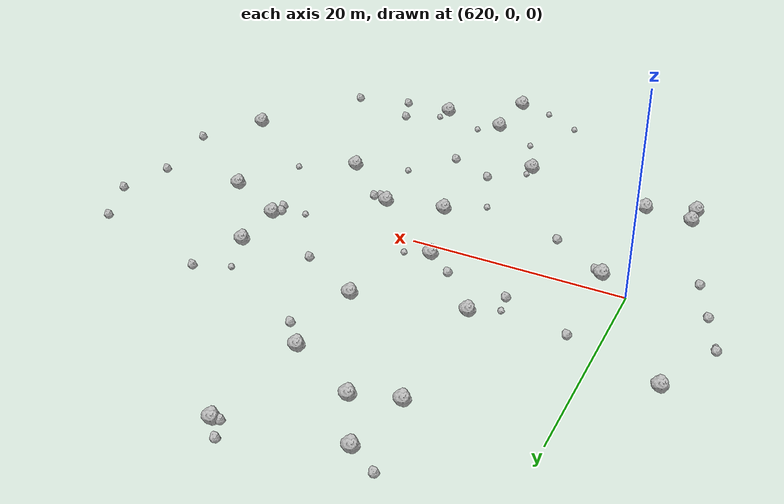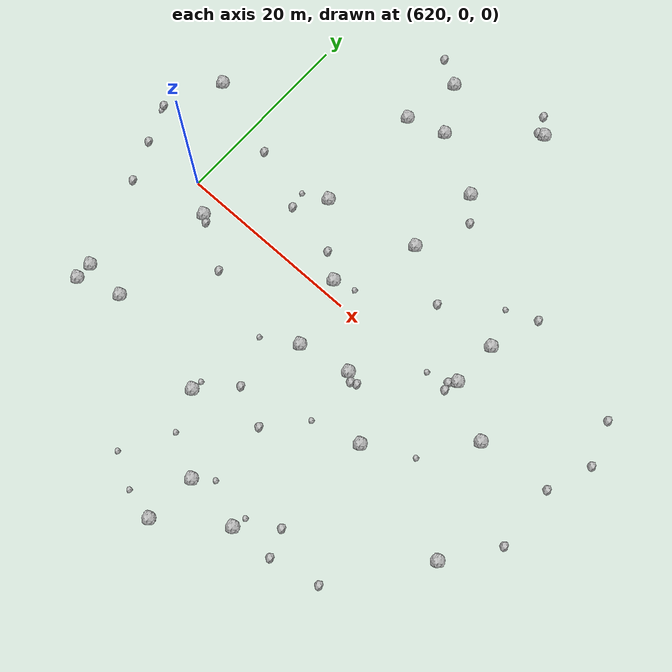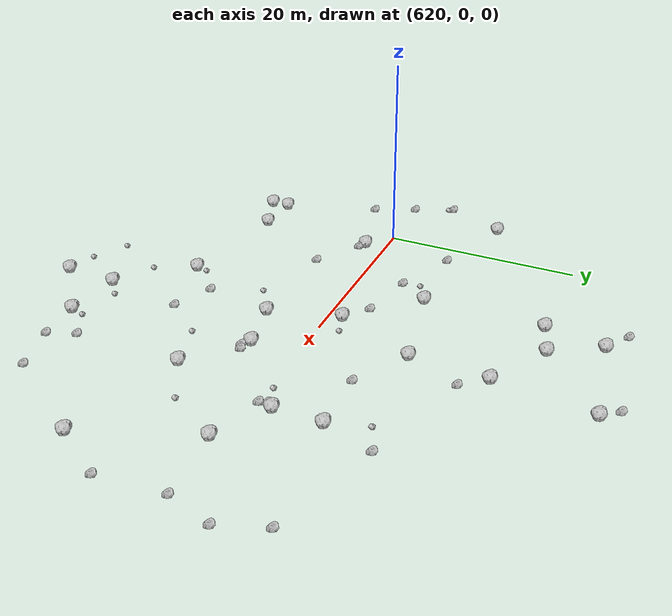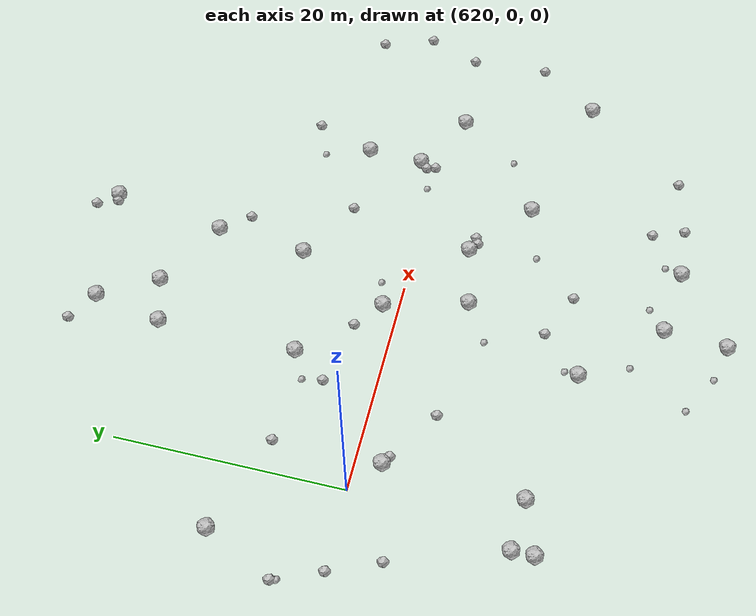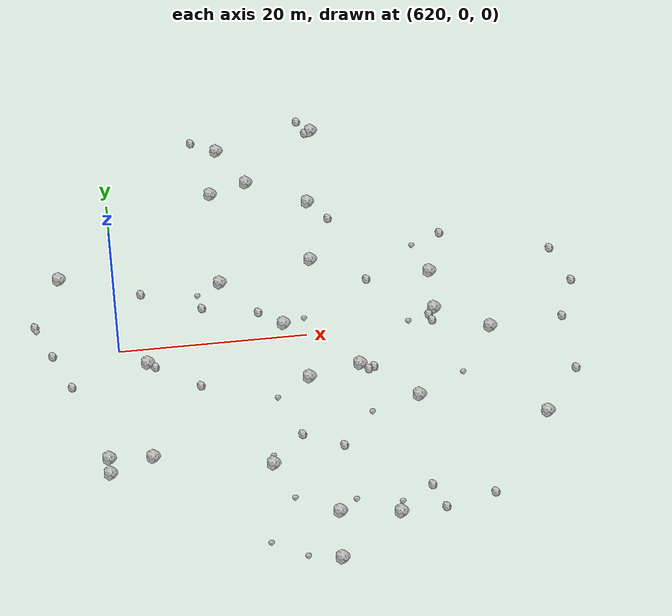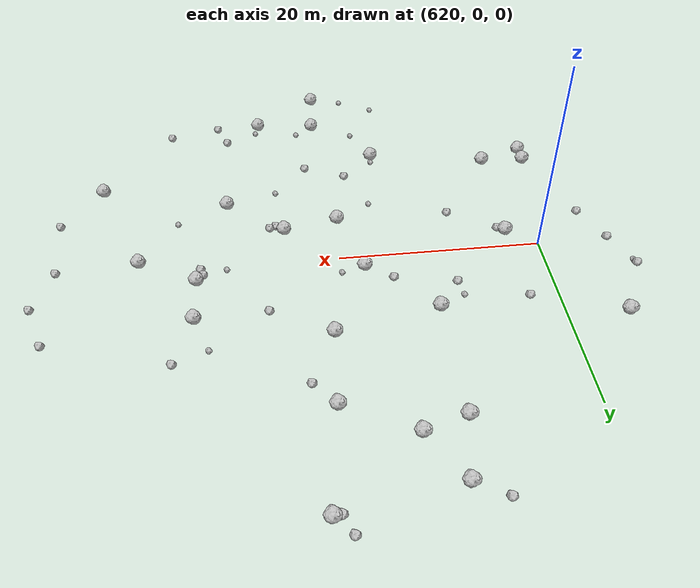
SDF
<sdf version="1.6">
 <world name="default">
  <include><uri>model://sun</uri></include>
  <model name="rock1_16_3">
   <include><uri>model://rock1</uri><pose>640.9179180316601 -22.855088018107523 0.5 0 0 0</pose></include>
  </model>
  <model name="rock1_16_4">
   <include><uri>model://rock1</uri><pose>653.9480879040835 1.8075277114036012 0.5 0 0 0</pose></include>
  </model>
  <model name="rock1_16_5">
   <include><uri>model://rock1</uri><pose>632.7248423310896 26.277384002841124 0.5 0 0 0</pose></include>
  </model>
  <model name="rock1_16_6">
   <include><uri>model://rock1</uri><pose>622.9202731600282 -2.163931713184539 0.5 0 0 0</pose></include>
  </model>
  <model name="rock1_16_7">
   <include><uri>model://rock1</uri><pose>622.5680611370533 -14.15012628049375 0.5 0 0 0</pose></include>
  </model>
  <model name="rock1_16_8">
   <include><uri>model://rock1</uri><pose>642.0836166489119 17.878089277357375 0.5 0 0 0</pose></include>
  </model>
  <model name="rock1_16_9">
   <include><uri>model://rock1</uri><pose>659.5736893577033 -1.2685945232825233 0.5 0 0 0</pose></include>
  </model>
  <model name="rock1_16_10">
   <include><uri>model://rock1</uri><pose>645.186707852381 -4.6671735750320344 0.5 0 0 0</pose></include>
  </model>
  <model name="rock1_16_11">
   <include><uri>model://rock1</uri><pose>639.6820947432288 -5.804105982791128 0.5 0 0 0</pose></include>
  </model>
  <model name="rock1_16_12">
   <include><uri>model://rock1</uri><pose>637.7042509927877 1.475646485162848 0.5 0 0 0</pose></include>
  </model>
  <model name="rock1_16_13">
   <include><uri>model://rock1</uri><pose>647.0925384567656 -23.587359685212647 0.5 0 0 0</pose></include>
  </model>
  <model name="rock1_16_14">
   <include><uri>model://rock1</uri><pose>640.4988118630145 -28.376408514939428 0.5 0 0 0</pose></include>
  </model>
  <model name="rock1_16_15">
   <include><uri>model://rock1</uri><pose>635.57899173564 21.3490631444864 0.5 0 0 0</pose></include>
  </model>
  <model name="rock1_16_16">
   <include><uri>model://rock1</uri><pose>643.573001994227 28.13265029655267 0.5 0 0 0</pose></include>
  </model>
  <model name="rock1_16_17">
   <include><uri>model://rock1</uri><pose>650.8835311110566 -9.344466584088522 0.5 0 0 0</pose></include>
  </model>
  <model name="rock1_16_18">
   <include><uri>model://rock1</uri><pose>614.1997275676592 10.013396057061072 0.5 0 0 0</pose></include>
  </model>
  <model name="rock1_16_19">
   <include><uri>model://rock1</uri><pose>631.4366944448577 7.678793747855735 0.5 0 0 0</pose></include>
  </model>
  <model name="rock1_16_20">
   <include><uri>model://rock1</uri><pose>654.131569358159 6.814421573072124 0.5 0 0 0</pose></include>
  </model>
  <model name="rock1_16_21">
   <include><uri>model://rock1</uri><pose>631.511693178842 20.086923645662957 0.5 0 0 0</pose></include>
  </model>
  <model name="rock1_16_22">
   <include><uri>model://rock1</uri><pose>618.065940295445 -15.721225943919407 0.5 0 0 0</pose></include>
  </model>
  <model name="rock1_16_23">
   <include><uri>model://rock1</uri><pose>634.8043790478741 -16.345927035335777 0.5 0 0 0</pose></include>
  </model>
  <model name="rock1_16_24">
   <include><uri>model://rock1</uri><pose>641.4848924237888 9.791355692980169 0.5 0 0 0</pose></include>
  </model>
  <model name="rock1_16_25">
   <include><uri>model://rock1</uri><pose>618.0470991616141 -13.847681899091342 0.5 0 0 0</pose></include>
  </model>
  <model name="rock1_16_26">
   <include><uri>model://rock1</uri><pose>663.9148012494474 -12.872118261599496 0.5 0 0 0</pose></include>
  </model>
  <model name="rock2_16_0">
   <include><uri>model://rock2</uri><pose>642.1082437067645 29.81400294700594 0.3 0 0 0</pose></include>
  </model>
  <model name="rock2_16_1">
   <include><uri>model://rock2</uri><pose>614.7533294294866 -4.3054035076457495 0.3 0 0 0</pose></include>
  </model>
  <model name="rock2_16_2">
   <include><uri>model://rock2</uri><pose>612.9407203092202 -0.07301878084572522 0.3 0 0 0</pose></include>
  </model>
  <model name="rock2_16_3">
   <include><uri>model://rock2</uri><pose>667.553667751038 8.70631345683259 0.3 0 0 0</pose></include>
  </model>
  <model name="rock2_16_4">
   <include><uri>model://rock2</uri><pose>646.5993997507842 -5.031475569613608 0.3 0 0 0</pose></include>
  </model>
  <model name="rock2_16_5">
   <include><uri>model://rock2</uri><pose>622.8136799817127 7.1716176290915215 0.3 0 0 0</pose></include>
  </model>
  <model name="rock2_16_6">
   <include><uri>model://rock2</uri><pose>644.0275949571756 15.468883761676764 0.3 0 0 0</pose></include>
  </model>
  <model name="rock2_16_7">
   <include><uri>model://rock2</uri><pose>628.2308769147672 -5.547629679953467 0.3 0 0 0</pose></include>
  </model>
  <model name="rock2_16_8">
   <include><uri>model://rock2</uri><pose>642.289963310001 -14.70535727899642 0.3 0 0 0</pose></include>
  </model>
  <model name="rock2_16_9">
   <include><uri>model://rock2</uri><pose>650.6767396131852 -20.539124903275187 0.3 0 0 0</pose></include>
  </model>
  <model name="rock2_16_10">
   <include><uri>model://rock2</uri><pose>651.7265859293437 -23.351217238092474 0.3 0 0 0</pose></include>
  </model>
  <model name="rock2_16_11">
   <include><uri>model://rock2</uri><pose>638.1434506982948 -12.885781202402121 0.3 0 0 0</pose></include>
  </model>
  <model name="rock2_16_12">
   <include><uri>model://rock2</uri><pose>629.1875891984783 4.5868156188745814 0.3 0 0 0</pose></include>
  </model>
  <model name="rock2_16_13">
   <include><uri>model://rock2</uri><pose>667.7499430691137 -7.544906236121459 0.3 0 0 0</pose></include>
  </model>
  <model name="rock2_16_14">
   <include><uri>model://rock2</uri><pose>653.514669370754 0.3456932470189855 0.3 0 0 0</pose></include>
  </model>
  <model name="rock2_16_15">
   <include><uri>model://rock2</uri><pose>642.8459366769213 28.01834190085711 0.3 0 0 0</pose></include>
  </model>
  <model name="rock2_16_16">
   <include><uri>model://rock2</uri><pose>611.2679026005153 3.949009786492944 0.3 0 0 0</pose></include>
  </model>
  <model name="rock2_16_17">
   <include><uri>model://rock2</uri><pose>653.269331146208 1.1363049475878952 0.3 0 0 0</pose></include>
  </model>
  <model name="rock2_16_18">
   <include><uri>model://rock2</uri><pose>623.6357577073286 -2.617553980122981 0.3 0 0 0</pose></include>
  </model>
  <model name="rock2_16_19">
   <include><uri>model://rock2</uri><pose>647.1938670664364 6.600795968666404 0.3 0 0 0</pose></include>
  </model>
  <model name="rock2_16_20">
   <include><uri>model://rock2</uri><pose>667.401003113514 -0.5937091087789028 0.3 0 0 0</pose></include>
  </model>
  <model name="rock2_16_21">
   <include><uri>model://rock2</uri><pose>635.1407983188851 3.4038661459687063 0.3 0 0 0</pose></include>
  </model>
  <model name="rock2_16_22">
   <include><uri>model://rock2</uri><pose>655.9195868319827 12.110695632852817 0.3 0 0 0</pose></include>
  </model>
  <model name="rock2_16_23">
   <include><uri>model://rock2</uri><pose>629.9540334236419 27.92093058494973 0.3 0 0 0</pose></include>
  </model>
  <model name="rock2_16_24">
   <include><uri>model://rock2</uri><pose>669.180924973619 4.110149341012615 0.3 0 0 0</pose></include>
  </model>
  <model name="rock2_16_25">
   <include><uri>model://rock2</uri><pose>645.993308365669 -5.298305989830588 0.3 0 0 0</pose></include>
  </model>
  <model name="rock2_16_26">
   <include><uri>model://rock2</uri><pose>656.9480847449522 -22.1408611751369 0.3 0 0 0</pose></include>
  </model>
  <model name="rock3_16_0">
   <include><uri>model://rock3</uri><pose>642.7396413856328 -21.42592427078179 0.2 0 0 0</pose></include>
  </model>
  <model name="rock3_16_1">
   <include><uri>model://rock3</uri><pose>636.0766640989277 -7.958277050917324 0.2 0 0 0</pose></include>
  </model>
  <model name="rock3_16_2">
   <include><uri>model://rock3</uri><pose>628.8653184130192 6.348906313732783 0.2 0 0 0</pose></include>
  </model>
  <model name="rock3_16_3">
   <include><uri>model://rock3</uri><pose>655.8365174702146 -6.742122849035855 0.2 0 0 0</pose></include>
  </model>
  <model name="rock3_16_4">
   <include><uri>model://rock3</uri><pose>647.3941475182387 -22.1874219527362 0.2 0 0 0</pose></include>
  </model>
  <model name="rock3_16_5">
   <include><uri>model://rock3</uri><pose>633.5627423847699 -25.720508462836946 0.2 0 0 0</pose></include>
  </model>
  <model name="rock3_16_6">
   <include><uri>model://rock3</uri><pose>645.7003929885285 -10.788501380232816 0.2 0 0 0</pose></include>
  </model>
  <model name="rock3_16_7">
   <include><uri>model://rock3</uri><pose>652.6999698260893 10.752417563655378 0.2 0 0 0</pose></include>
  </model>
  <model name="rock3_16_8">
   <include><uri>model://rock3</uri><pose>634.8757811999029 -15.21426778385151 0.2 0 0 0</pose></include>
  </model>
  <model name="rock3_16_9">
   <include><uri>model://rock3</uri><pose>639.9462045689874 2.126024801936289 0.2 0 0 0</pose></include>
  </model>
  <model name="rock3_16_10">
   <include><uri>model://rock3</uri><pose>636.5291108920384 -20.580027531892846 0.2 0 0 0</pose></include>
  </model>
  <model name="rock3_16_11">
   <include><uri>model://rock3</uri><pose>611.4037326290344 3.3979015494256686 0.2 0 0 0</pose></include>
  </model>
  <model name="rock3_16_12">
   <include><uri>model://rock3</uri><pose>650.9838658239637 0.537597186787302 0.2 0 0 0</pose></include>
  </model>
  <model name="rock3_16_13">
   <include><uri>model://rock3</uri><pose>637.0887773603736 -27.67842949971812 0.2 0 0 0</pose></include>
  </model>
 </world>
</sdf>
